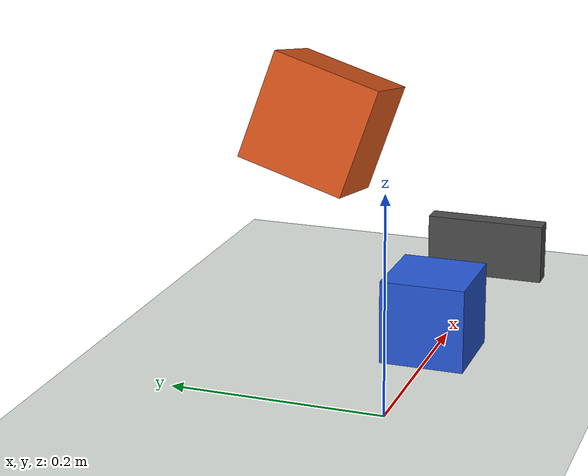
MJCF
<mujoco model="cube_table">
  <compiler angle="radian" autolimits="true"/>
  <option timestep="0.002"/>

  <visual>
    <scale contactwidth="0.05" contactheight="0.01" forcewidth="0.02"/>
    <map force="0.05"/>
  </visual>

  <worldbody>
    <light pos="0 -1 2" dir="0 0.5 -1"/>
    <geom name="floor" type="plane" size="1 1 0.05" rgba=".86 .88 .86 1"/>
    <body name="drop_cube" pos="-0.15 0 0.3" euler="0.3 0.2 0">
      <freejoint name="drop_cube"/>
      <geom name="drop_cube" type="box" size="0.04 0.04 0.04" mass="0.5" rgba=".85 .33 .1 1"/>
    </body>
    <body name="rest_cube" pos="0.15 0 0.04">
      <freejoint name="rest_cube"/>
      <geom name="rest_cube" type="box" size="0.04 0.04 0.04" mass="0.5" rgba=".15 .35 .85 1"/>
    </body>
    <body name="pusher" mocap="true" pos="0.35 0 0.04">
      <geom name="pusher" type="box" size="0.01 0.06 0.03" rgba=".3 .3 .3 1"/>
    </body>
  </worldbody>

  <sensor>
    <framepos name="drop_pos" objtype="body" objname="drop_cube"/>
    <framepos name="rest_pos" objtype="body" objname="rest_cube"/>
  </sensor>
</mujoco>
